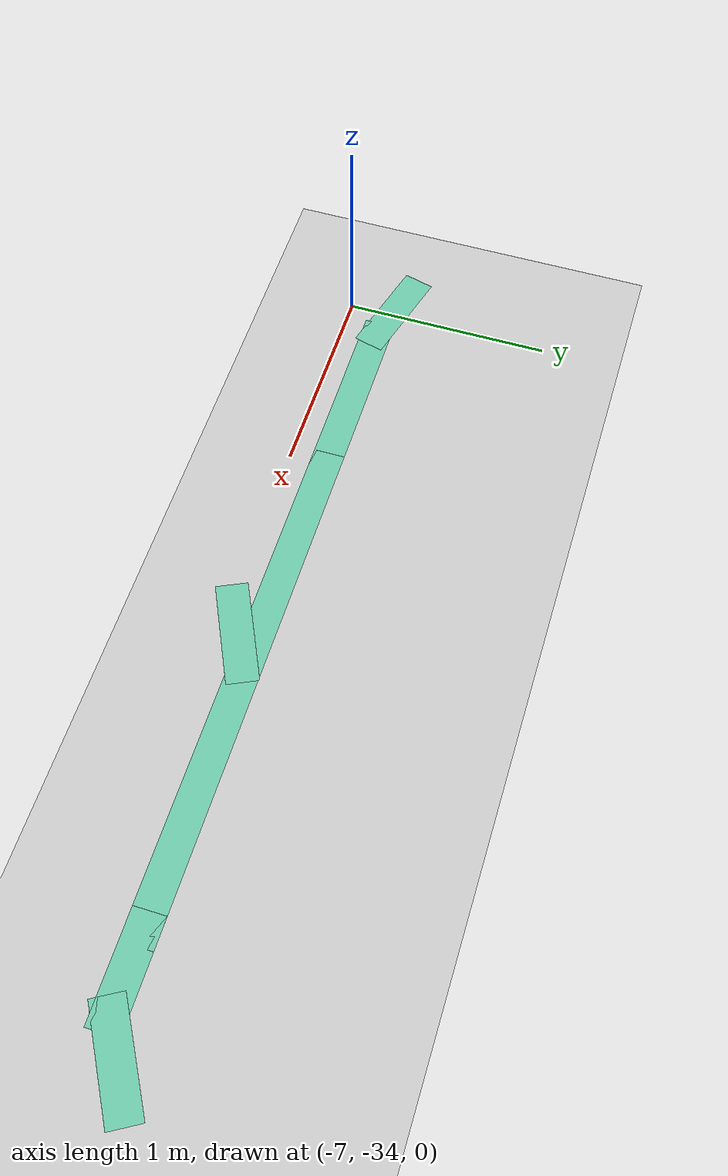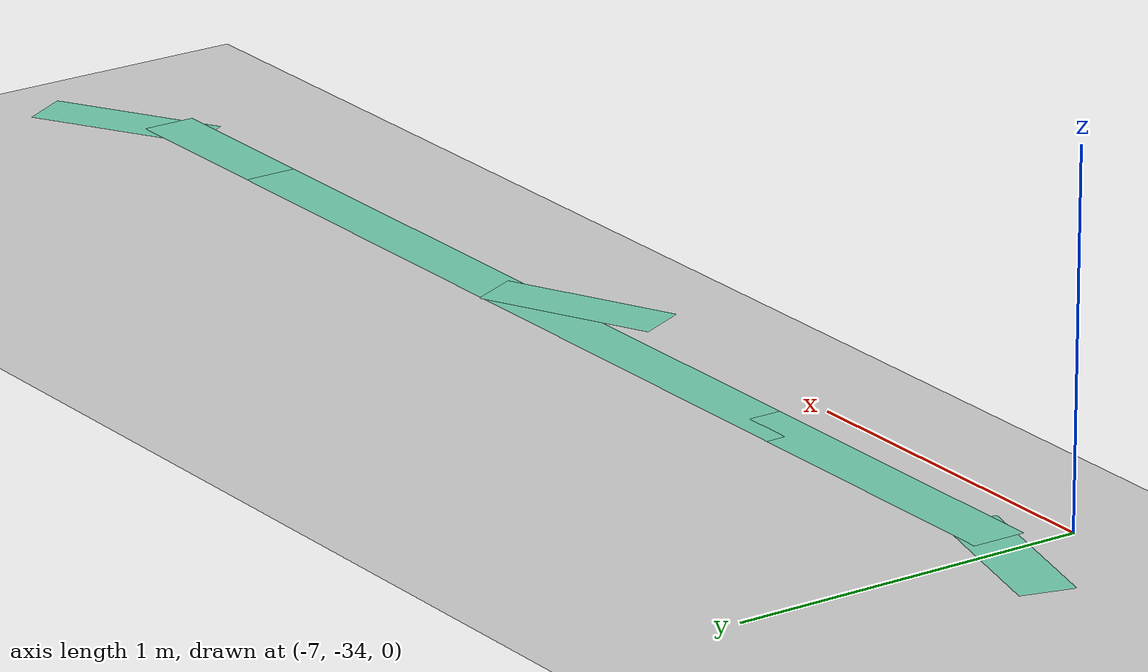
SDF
<sdf version="1.6">
 <world name="world">
  <model name="ground_plane">
   <static>1</static>
   <link name="link">
    <collision name="collision">
     <geometry><plane><normal>0 0 1</normal><size>100 100</size></plane></geometry>
     <surface><friction><ode><mu>100</mu><mu2>50</mu2></ode></friction></surface>
    </collision>
    <visual name="visual">
     <cast_shadows>0</cast_shadows>
     <geometry><plane><normal>0 0 1</normal><size>100 100</size></plane></geometry>
     <material>
      <script><uri>file://media/materials/scripts/gazebo.material</uri><name>Gazebo/Grey</name></script>
     </material>
    </visual>
   </link>
   <pose>0 0 -0.1 0 -0 0</pose>
  </model>
  <model name="path_hospital">
   <link name="Wall_27">
    <pose>-1.55701 -6.25166 0 0 0 -2.61799</pose>
    <visual name="Wall_27_Visual">
     <geometry><box><size>0.5 0.15 0</size></box></geometry>
     <material>
      <script><uri>file://media/materials/scripts/gazebo.material</uri><name>Gazebo/Grey</name></script>
      <ambient>0.435294 0.796078 0.67451 1</ambient>
      <shader type="pixel"/>
     </material>
     <meta><layer>0</layer></meta>
    </visual>
    <collision name="Wall_27_Collision">
     <geometry><box><size>0.5 0.15 0</size></box></geometry>
     <surface>
      <friction>
       <ode><mu>1</mu><mu2>1</mu2><fdir1>0 0 0</fdir1><slip1>0</slip1><slip2>0</slip2></ode>
       <torsional>
        <coefficient>1</coefficient>
        <patch_radius>0</patch_radius>
        <surface_radius>0</surface_radius>
        <use_patch_radius>1</use_patch_radius>
        <ode><slip>0</slip></ode>
       </torsional>
      </friction>
      <bounce><restitution_coefficient>0</restitution_coefficient><threshold>1e+06</threshold></bounce>
      <contact>
       <collide_without_contact>0</collide_without_contact>
       <collide_without_contact_bitmask>1</collide_without_contact_bitmask>
       <collide_bitmask>1</collide_bitmask>
       <ode>
        <soft_cfm>0</soft_cfm>
        <soft_erp>0.2</soft_erp>
        <kp>1e+13</kp>
        <kd>1</kd>
        <max_vel>0.01</max_vel>
        <min_depth>0</min_depth>
       </ode>
       <bullet>
        <split_impulse>1</split_impulse>
        <split_impulse_penetration_threshold>-0.01</split_impulse_penetration_threshold>
        <soft_cfm>0</soft_cfm>
        <soft_erp>0.2</soft_erp>
        <kp>1e+13</kp>
        <kd>1</kd>
       </bullet>
      </contact>
     </surface>
    </collision>
   </link>
   <link name="Wall_28">
    <pose>-1.88357 -6.33915 0 0 -0 3.14159</pose>
    <visual name="Wall_28_Visual">
     <geometry><box><size>0.5 0.15 0</size></box></geometry>
     <material>
      <script><uri>file://media/materials/scripts/gazebo.material</uri><name>Gazebo/Grey</name></script>
      <ambient>0.435294 0.796078 0.67451 1</ambient>
      <shader type="pixel"/>
     </material>
     <meta><layer>0</layer></meta>
    </visual>
    <collision name="Wall_28_Collision">
     <geometry><box><size>0.5 0.15 0</size></box></geometry>
     <surface>
      <friction>
       <ode><mu>1</mu><mu2>1</mu2><fdir1>0 0 0</fdir1><slip1>0</slip1><slip2>0</slip2></ode>
       <torsional>
        <coefficient>1</coefficient>
        <patch_radius>0</patch_radius>
        <surface_radius>0</surface_radius>
        <use_patch_radius>1</use_patch_radius>
        <ode><slip>0</slip></ode>
       </torsional>
      </friction>
      <bounce><restitution_coefficient>0</restitution_coefficient><threshold>1e+06</threshold></bounce>
      <contact>
       <collide_without_contact>0</collide_without_contact>
       <collide_without_contact_bitmask>1</collide_without_contact_bitmask>
       <collide_bitmask>1</collide_bitmask>
       <ode>
        <soft_cfm>0</soft_cfm>
        <soft_erp>0.2</soft_erp>
        <kp>1e+13</kp>
        <kd>1</kd>
        <max_vel>0.01</max_vel>
        <min_depth>0</min_depth>
       </ode>
       <bullet>
        <split_impulse>1</split_impulse>
        <split_impulse_penetration_threshold>-0.01</split_impulse_penetration_threshold>
        <soft_cfm>0</soft_cfm>
        <soft_erp>0.2</soft_erp>
        <kp>1e+13</kp>
        <kd>1</kd>
       </bullet>
      </contact>
     </surface>
    </collision>
   </link>
   <link name="Wall_29">
    <pose>-3.23357 -6.33915 0 0 -0 3.14159</pose>
    <visual name="Wall_29_Visual">
     <geometry><box><size>2.5 0.15 0</size></box></geometry>
     <material>
      <script><uri>file://media/materials/scripts/gazebo.material</uri><name>Gazebo/Grey</name></script>
      <ambient>0.435294 0.796078 0.67451 1</ambient>
      <shader type="pixel"/>
     </material>
     <meta><layer>0</layer></meta>
    </visual>
    <collision name="Wall_29_Collision">
     <geometry><box><size>2.5 0.15 0</size></box></geometry>
     <surface>
      <friction>
       <ode><mu>1</mu><mu2>1</mu2><fdir1>0 0 0</fdir1><slip1>0</slip1><slip2>0</slip2></ode>
       <torsional>
        <coefficient>1</coefficient>
        <patch_radius>0</patch_radius>
        <surface_radius>0</surface_radius>
        <use_patch_radius>1</use_patch_radius>
        <ode><slip>0</slip></ode>
       </torsional>
      </friction>
      <bounce><restitution_coefficient>0</restitution_coefficient><threshold>1e+06</threshold></bounce>
      <contact>
       <collide_without_contact>0</collide_without_contact>
       <collide_without_contact_bitmask>1</collide_without_contact_bitmask>
       <collide_bitmask>1</collide_bitmask>
       <ode>
        <soft_cfm>0</soft_cfm>
        <soft_erp>0.2</soft_erp>
        <kp>1e+13</kp>
        <kd>1</kd>
        <max_vel>0.01</max_vel>
        <min_depth>0</min_depth>
       </ode>
       <bullet>
        <split_impulse>1</split_impulse>
        <split_impulse_penetration_threshold>-0.01</split_impulse_penetration_threshold>
        <soft_cfm>0</soft_cfm>
        <soft_erp>0.2</soft_erp>
        <kp>1e+13</kp>
        <kd>1</kd>
       </bullet>
      </contact>
     </surface>
    </collision>
   </link>
   <link name="Wall_31">
    <pose>-4.83357 -6.33915 0 0 -0 3.14159</pose>
    <visual name="Wall_31_Visual">
     <geometry><box><size>1 0.15 0</size></box></geometry>
     <material>
      <script><uri>file://media/materials/scripts/gazebo.material</uri><name>Gazebo/Grey</name></script>
      <ambient>0.435294 0.796078 0.67451 1</ambient>
      <shader type="pixel"/>
     </material>
     <meta><layer>0</layer></meta>
    </visual>
    <collision name="Wall_31_Collision">
     <geometry><box><size>1 0.15 0</size></box></geometry>
     <surface>
      <friction>
       <ode><mu>1</mu><mu2>1</mu2><fdir1>0 0 0</fdir1><slip1>0</slip1><slip2>0</slip2></ode>
       <torsional>
        <coefficient>1</coefficient>
        <patch_radius>0</patch_radius>
        <surface_radius>0</surface_radius>
        <use_patch_radius>1</use_patch_radius>
        <ode><slip>0</slip></ode>
       </torsional>
      </friction>
      <bounce><restitution_coefficient>0</restitution_coefficient><threshold>1e+06</threshold></bounce>
      <contact>
       <collide_without_contact>0</collide_without_contact>
       <collide_without_contact_bitmask>1</collide_without_contact_bitmask>
       <collide_bitmask>1</collide_bitmask>
       <ode>
        <soft_cfm>0</soft_cfm>
        <soft_erp>0.2</soft_erp>
        <kp>1e+13</kp>
        <kd>1</kd>
        <max_vel>0.01</max_vel>
        <min_depth>0</min_depth>
       </ode>
       <bullet>
        <split_impulse>1</split_impulse>
        <split_impulse_penetration_threshold>-0.01</split_impulse_penetration_threshold>
        <soft_cfm>0</soft_cfm>
        <soft_erp>0.2</soft_erp>
        <kp>1e+13</kp>
        <kd>1</kd>
       </bullet>
      </contact>
     </surface>
    </collision>
   </link>
   <link name="Wall_32">
    <pose>-5.4276 -6.29386 0 0 -0 2.87979</pose>
    <visual name="Wall_32_Visual">
     <geometry><box><size>0.5 0.15 0</size></box></geometry>
     <material>
      <script><uri>file://media/materials/scripts/gazebo.material</uri><name>Gazebo/Grey</name></script>
      <ambient>0.435294 0.796078 0.67451 1</ambient>
      <shader type="pixel"/>
     </material>
     <meta><layer>0</layer></meta>
    </visual>
    <collision name="Wall_32_Collision">
     <geometry><box><size>0.5 0.15 0</size></box></geometry>
     <surface>
      <friction>
       <ode><mu>1</mu><mu2>1</mu2><fdir1>0 0 0</fdir1><slip1>0</slip1><slip2>0</slip2></ode>
       <torsional>
        <coefficient>1</coefficient>
        <patch_radius>0</patch_radius>
        <surface_radius>0</surface_radius>
        <use_patch_radius>1</use_patch_radius>
        <ode><slip>0</slip></ode>
       </torsional>
      </friction>
      <bounce><restitution_coefficient>0</restitution_coefficient><threshold>1e+06</threshold></bounce>
      <contact>
       <collide_without_contact>0</collide_without_contact>
       <collide_without_contact_bitmask>1</collide_without_contact_bitmask>
       <collide_bitmask>1</collide_bitmask>
       <ode>
        <soft_cfm>0</soft_cfm>
        <soft_erp>0.2</soft_erp>
        <kp>1e+13</kp>
        <kd>1</kd>
        <max_vel>0.01</max_vel>
        <min_depth>0</min_depth>
       </ode>
       <bullet>
        <split_impulse>1</split_impulse>
        <split_impulse_penetration_threshold>-0.01</split_impulse_penetration_threshold>
        <soft_cfm>0</soft_cfm>
        <soft_erp>0.2</soft_erp>
        <kp>1e+13</kp>
        <kd>1</kd>
       </bullet>
      </contact>
     </surface>
    </collision>
   </link>
   <link name="Wall_60_clone_clone_clone_0_clone_0">
    <pose>-3.42856 -6.43268 0 0 0 -2.7</pose>
    <inertial>
     <mass>1</mass>
     <inertia><ixx>1</ixx><ixy>0</ixy><ixz>0</ixz><iyy>1</iyy><iyz>0</iyz><izz>1</izz></inertia>
    </inertial>
    <visual name="Wall_60_Visual">
     <geometry><box><size>0.5 0.15 0</size></box></geometry>
     <material>
      <script><uri>file://media/materials/scripts/gazebo.material</uri><name>Gazebo/Grey</name></script>
      <ambient>0.435 0.796 0.675 1</ambient>
      <shader type="pixel"><normal_map>__default__</normal_map></shader>
      <diffuse>0.7 0.7 0.7 1</diffuse>
      <specular>0.01 0.01 0.01 1</specular>
      <emissive>0 0 0 1</emissive>
     </material>
     <meta><layer>0</layer></meta>
    </visual>
    <collision name="Wall_60_Collision">
     <geometry><box><size>0.5 0.15 0</size></box></geometry>
     <surface>
      <friction>
       <ode><mu>1</mu><mu2>1</mu2><fdir1>0 0 0</fdir1><slip1>0</slip1><slip2>0</slip2></ode>
       <torsional>
        <coefficient>1</coefficient>
        <patch_radius>0</patch_radius>
        <surface_radius>0</surface_radius>
        <use_patch_radius>1</use_patch_radius>
        <ode><slip>0</slip></ode>
       </torsional>
      </friction>
      <bounce><restitution_coefficient>0</restitution_coefficient><threshold>1e+06</threshold></bounce>
      <contact>
       <collide_without_contact>0</collide_without_contact>
       <collide_without_contact_bitmask>1</collide_without_contact_bitmask>
       <collide_bitmask>1</collide_bitmask>
       <ode>
        <soft_cfm>0</soft_cfm>
        <soft_erp>0.2</soft_erp>
        <kp>1e+13</kp>
        <kd>1</kd>
        <max_vel>0.01</max_vel>
        <min_depth>0</min_depth>
       </ode>
       <bullet>
        <split_impulse>1</split_impulse>
        <split_impulse_penetration_threshold>-0.01</split_impulse_penetration_threshold>
        <soft_cfm>0</soft_cfm>
        <soft_erp>0.2</soft_erp>
        <kp>1e+13</kp>
        <kd>1</kd>
       </bullet>
      </contact>
     </surface>
    </collision>
   </link>
   <static>1</static>
   <pose>-1.59521 -27.4877 0.001 0 -0 0</pose>
  </model>
 </world>
</sdf>
